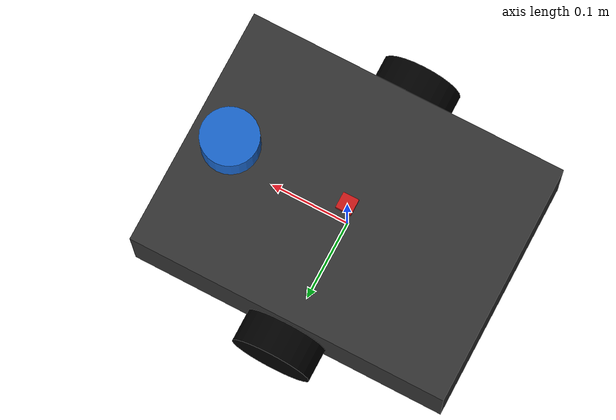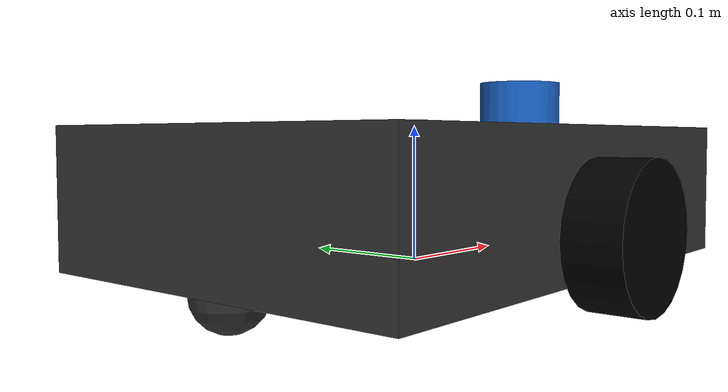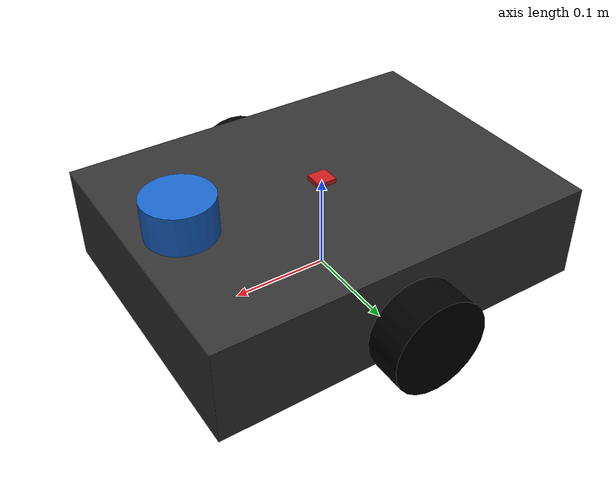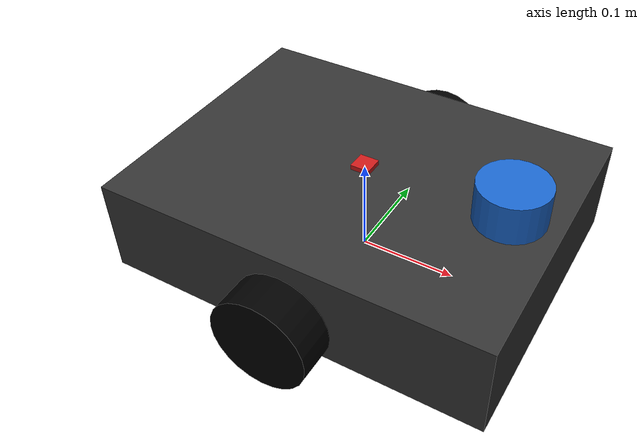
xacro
<?xml version="1.0"?>
<robot name="hybrid_robot" xmlns:xacro="http://www.ros.org/wiki/xacro">

  <!-- ==================== PROPERTIES ==================== -->
  <xacro:property name="chassis_length" value="0.4"/>
  <xacro:property name="chassis_width"  value="0.3"/>
  <xacro:property name="chassis_height" value="0.1"/>
  <xacro:property name="chassis_mass"   value="2.0"/>

  <xacro:property name="wheel_radius"   value="0.05"/>
  <xacro:property name="wheel_width"    value="0.04"/>
  <xacro:property name="wheel_mass"     value="0.3"/>
  <xacro:property name="wheel_offset_y" value="0.17"/>
  <xacro:property name="wheel_offset_z" value="-0.02"/>

  <xacro:property name="caster_radius"  value="0.025"/>
  <xacro:property name="caster_mass"    value="0.1"/>

  <!-- ==================== MATERIALS ==================== -->
  <material name="dark_gray">
    <color rgba="0.2 0.2 0.2 1.0"/>
  </material>
  <material name="blue">
    <color rgba="0.1 0.4 0.8 1.0"/>
  </material>
  <material name="black">
    <color rgba="0.0 0.0 0.0 1.0"/>
  </material>
  <material name="red">
    <color rgba="0.8 0.1 0.1 1.0"/>
  </material>

  <!-- ==================== INERTIA MACROS ==================== -->
  <xacro:macro name="box_inertia" params="m l w h">
    <inertial>
      <mass value="${m}"/>
      <inertia
        ixx="${m*(w*w+h*h)/12}" ixy="0" ixz="0"
        iyy="${m*(l*l+h*h)/12}" iyz="0"
        izz="${m*(l*l+w*w)/12}"/>
    </inertial>
  </xacro:macro>

  <xacro:macro name="cylinder_inertia" params="m r h">
    <inertial>
      <mass value="${m}"/>
      <inertia
        ixx="${m*(3*r*r+h*h)/12}" ixy="0" ixz="0"
        iyy="${m*(3*r*r+h*h)/12}" iyz="0"
        izz="${m*r*r/2}"/>
    </inertial>
  </xacro:macro>

  <xacro:macro name="sphere_inertia" params="m r">
    <inertial>
      <mass value="${m}"/>
      <inertia
        ixx="${2*m*r*r/5}" ixy="0" ixz="0"
        iyy="${2*m*r*r/5}" iyz="0"
        izz="${2*m*r*r/5}"/>
    </inertial>
  </xacro:macro>

  <!-- ==================== BASE FOOTPRINT ==================== -->
  <link name="base_footprint"/>

  <joint name="base_footprint_joint" type="fixed">
    <parent link="base_footprint"/>
    <child  link="base_link"/>
    <origin xyz="0 0 ${wheel_radius}" rpy="0 0 0"/>
  </joint>

  <!-- ==================== BASE LINK (CHASSIS) ==================== -->
  <link name="base_link">
    <visual>
      <geometry>
        <box size="${chassis_length} ${chassis_width} ${chassis_height}"/>
      </geometry>
      <material name="dark_gray"/>
    </visual>
    <collision>
      <geometry>
        <box size="${chassis_length} ${chassis_width} ${chassis_height}"/>
      </geometry>
    </collision>
    <xacro:box_inertia m="${chassis_mass}"
                       l="${chassis_length}"
                       w="${chassis_width}"
                       h="${chassis_height}"/>
  </link>

  <!-- ==================== WHEEL MACRO ==================== -->
  <xacro:macro name="wheel" params="name side reflect">
    <link name="${name}">
      <visual>
        <geometry>
          <cylinder radius="${wheel_radius}" length="${wheel_width}"/>
        </geometry>
        <origin xyz="0 0 0" rpy="${pi/2} 0 0"/>
        <material name="black"/>
      </visual>
      <collision>
        <geometry>
          <cylinder radius="${wheel_radius}" length="${wheel_width}"/>
        </geometry>
        <origin xyz="0 0 0" rpy="${pi/2} 0 0"/>
      </collision>
      <xacro:cylinder_inertia m="${wheel_mass}"
                              r="${wheel_radius}"
                              h="${wheel_width}"/>
    </link>
<joint name="${name}_joint" type="continuous">
      <parent link="base_link"/>
      <child  link="${name}"/>
      <origin xyz="0 ${reflect * wheel_offset_y} ${wheel_offset_z}"
              rpy="0 0 0"/>
      <axis xyz="0 1 0"/>
      <dynamics damping="0.1" friction="0.1"/>
    </joint>
  </xacro:macro>

  <xacro:wheel name="wheel_left"  side="left"  reflect="1"/>
  <xacro:wheel name="wheel_right" side="right" reflect="-1"/>

  <!-- ==================== CASTER WHEEL ==================== -->
  <link name="caster_wheel">
    <visual>
      <geometry>
        <sphere radius="${caster_radius}"/>
      </geometry>
      <material name="dark_gray"/>
    </visual>
    <collision>
      <geometry>
        <sphere radius="${caster_radius}"/>
      </geometry>
    </collision>
    <xacro:sphere_inertia m="${caster_mass}" r="${caster_radius}"/>
  </link>

  <joint name="caster_joint" type="fixed">
    <parent link="base_link"/>
    <child  link="caster_wheel"/>
    <origin xyz="${-chassis_length/2 + caster_radius} 0 ${-chassis_height/2}"
            rpy="0 0 0"/>
  </joint>

  <!-- ==================== LIDAR ==================== -->
  <link name="lidar_link">
    <visual>
      <geometry>
        <cylinder radius="0.035" length="0.04"/>
      </geometry>
      <material name="blue"/>
    </visual>
    <collision>
      <geometry>
        <cylinder radius="0.035" length="0.04"/>
      </geometry>
    </collision>
    <inertial>
      <mass value="0.1"/>
      <inertia ixx="0.001" ixy="0" ixz="0"
               iyy="0.001" iyz="0" izz="0.001"/>
    </inertial>
  </link>

  <joint name="lidar_joint" type="fixed">
    <parent link="base_link"/>
    <child  link="lidar_link"/>
    <origin xyz="${chassis_length/2 - 0.05} 0 ${chassis_height/2 + 0.02}"
            rpy="0 0 0"/>
  </joint>

  <!-- ==================== IMU ==================== -->
  <link name="imu_link">
    <visual>
      <geometry>
        <box size="0.02 0.02 0.01"/>
      </geometry>
      <material name="red"/>
    </visual>
    <inertial>
      <mass value="0.01"/>
      <inertia ixx="0.0001" ixy="0" ixz="0"
               iyy="0.0001" iyz="0" izz="0.0001"/>
    </inertial>
  </link>

  <joint name="imu_joint" type="fixed">
    <parent link="base_link"/>
    <child  link="imu_link"/>
    <origin xyz="0 0 ${chassis_height/2}" rpy="0 0 0"/>
  </joint>

  <!-- ==================== GAZEBO MATERIALS ==================== -->
  <gazebo reference="base_link">
    <material>Gazebo/DarkGray</material>
  </gazebo>
  <gazebo reference="wheel_left">
    <material>Gazebo/Black</material>
    <mu1>1.0</mu1>
    <mu2>1.0</mu2>
  </gazebo>
  <gazebo reference="wheel_right">
    <material>Gazebo/Black</material>
    <mu1>1.0</mu1>
    <mu2>1.0</mu2>
  </gazebo>
  <gazebo reference="caster_wheel">
    <material>Gazebo/Gray</material>
    <mu1>0.01</mu1>
    <mu2>0.01</mu2>
  </gazebo>
  <gazebo reference="lidar_link">
    <material>Gazebo/Blue</material>
  </gazebo>

  <!-- ==================== PLUGIN: DIFFERENTIAL DRIVE ==================== -->
  <gazebo>
    <plugin name="differential_drive_controller"
            filename="libgazebo_ros_diff_drive.so">
      <rosDebugLevel>na</rosDebugLevel>
      <publishWheelTF>true</publishWheelTF>
      <publishOdomTF>true</publishOdomTF>
      <publishWheelJointState>true</publishWheelJointState>
      <alwaysOn>true</alwaysOn>
      <updateRate>50</updateRate>
      <leftJoint>wheel_left_joint</leftJoint>
      <rightJoint>wheel_right_joint</rightJoint>
      <wheelSeparation>${wheel_offset_y * 2}</wheelSeparation>
      <wheelDiameter>${wheel_radius * 2}</wheelDiameter>
      <wheelTorque>5</wheelTorque>
      <wheelAcceleration>1.0</wheelAcceleration>
      <commandTopic>cmd_vel</commandTopic>
      <odometryTopic>odom</odometryTopic>
      <odometryFrame>odom</odometryFrame>
      <robotBaseFrame>base_footprint</robotBaseFrame>
    </plugin>
  </gazebo>
<!-- ==================== PLUGIN: LIDAR ==================== -->
  <gazebo reference="lidar_link">
    <sensor type="ray" name="lidar_sensor">
      <pose>0 0 0 0 0 0</pose>
      <visualize>true</visualize>
      <update_rate>10</update_rate>
      <ray>
        <scan>
          <horizontal>
            <samples>360</samples>
            <resolution>1</resolution>
            <min_angle>-3.14159</min_angle>
            <max_angle>3.14159</max_angle>
          </horizontal>
        </scan>
        <range>
          <min>0.15</min>
          <max>8.0</max>
          <resolution>0.01</resolution>
        </range>
        <noise>
          <type>gaussian</type>
          <mean>0.0</mean>
          <stddev>0.01</stddev>
        </noise>
      </ray>
      <plugin name="lidar_plugin" filename="libgazebo_ros_laser.so">
        <topicName>/scan</topicName>
        <frameName>lidar_link</frameName>
      </plugin>
    </sensor>
  </gazebo>

  <!-- ==================== PLUGIN: IMU ==================== -->
  <gazebo reference="imu_link">
    <sensor type="imu" name="imu_sensor">
      <always_on>true</always_on>
      <update_rate>50</update_rate>
      <visualize>false</visualize>
      <plugin name="imu_plugin" filename="libgazebo_ros_imu_sensor.so">
        <topicName>/imu</topicName>
        <bodyName>imu_link</bodyName>
        <updateRateHZ>50</updateRateHZ>
        <gaussianNoise>0.01</gaussianNoise>
        <xyzOffset>0 0 0</xyzOffset>
        <rpyOffset>0 0 0</rpyOffset>
        <frameName>imu_link</frameName>
      </plugin>
    </sensor>
  </gazebo>

</robot>
